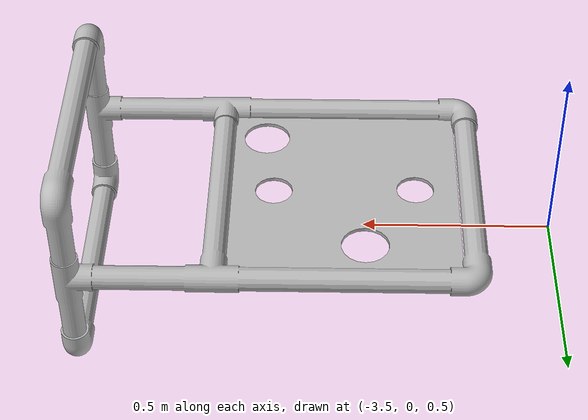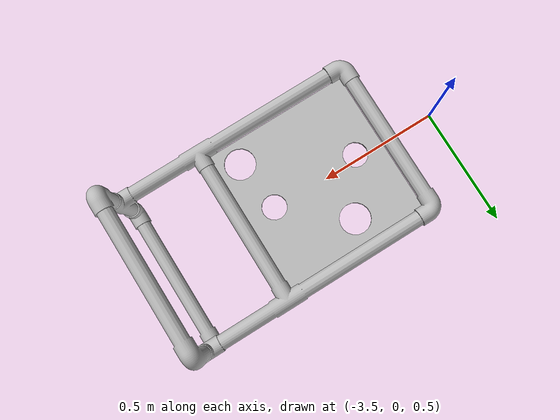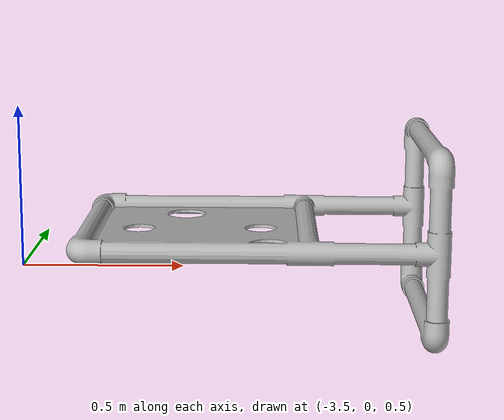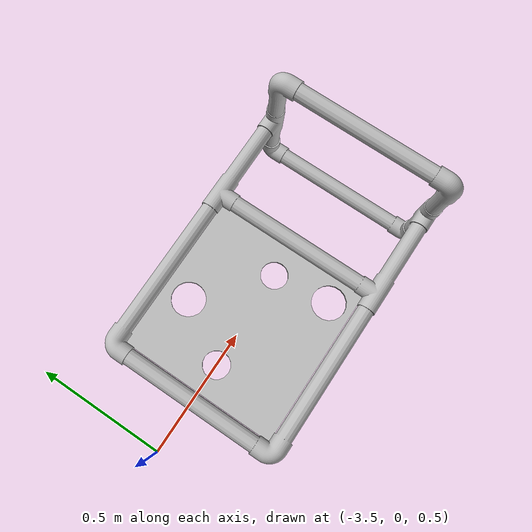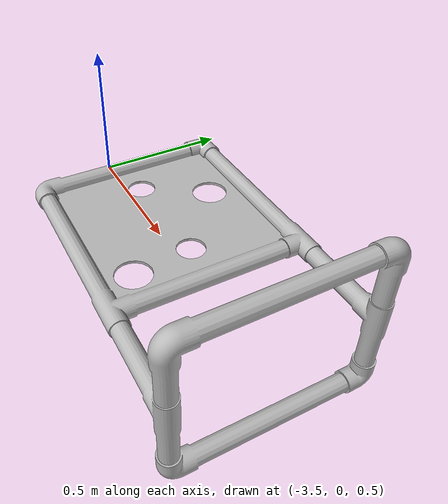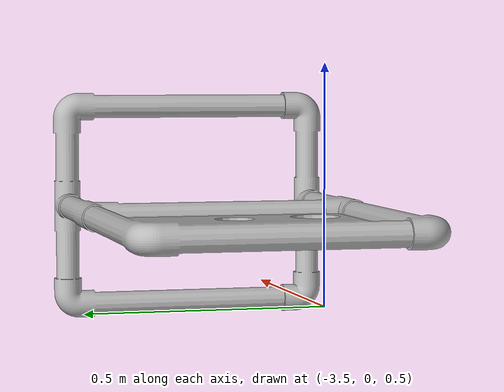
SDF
<sdf version='1.9'>
  <model name='rs2026_torpedo'>
    <static>true</static>

    <link name='base_link'>
      <pose>-1.071211 -0.126489 1.696842 0 0 0</pose>

      <inertial>
        <pose>0.127055 1.073286 1.621449 0 0 1.5708</pose>
        <mass>11.6979</mass>
        <inertia>
          <ixx>0.159463</ixx>
          <ixy>-9.0771e-10</ixy>
          <ixz>0.006781</ixz>
          <iyy>0.347431</iyy>
          <iyz>4.0684e-20</iyz>
          <izz>0.201773</izz>
        </inertia>
      </inertial>

      <visual name='base_link_visual'>
        <pose>0 0 0 3.14159 0 1.5708</pose>
        <geometry>
          <mesh>
            <scale>1 1 1</scale>
            <uri>model://rs2026_torpedo/meshes/base_link.glb</uri>
          </mesh>
        </geometry>

      </visual>
    </link>

  </model>
</sdf>
